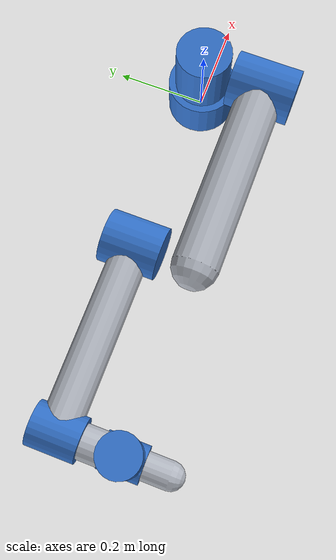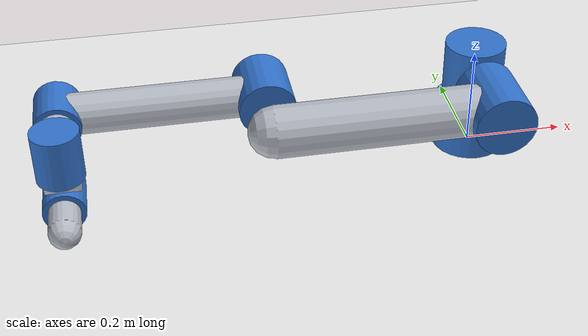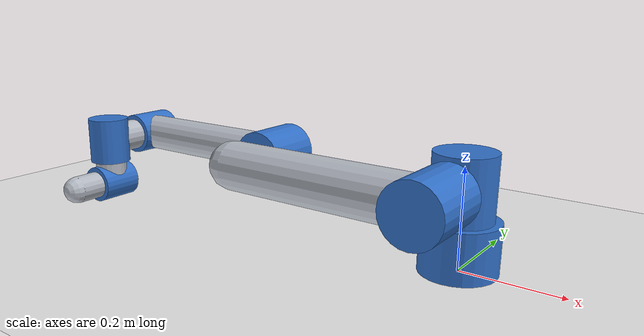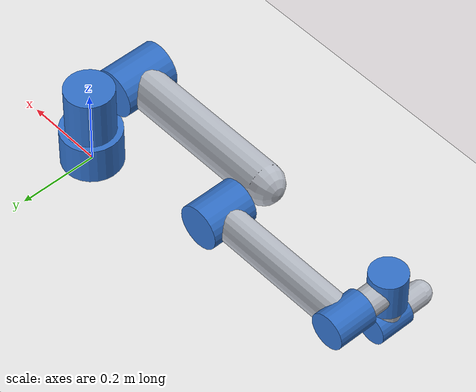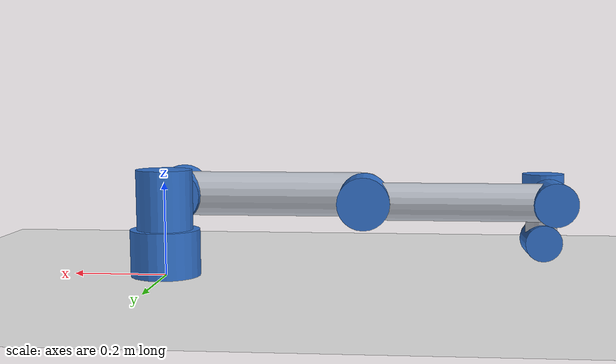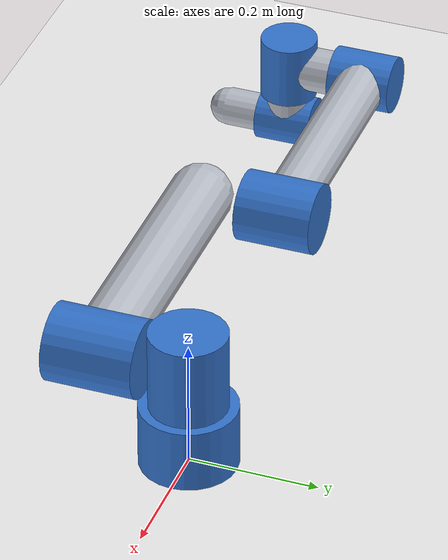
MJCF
<mujoco model="ur5e_style">
  <compiler angle="radian" autolimits="true"/>
  <option timestep="0.001" gravity="0 0 -9.81">
    <flag contact="disable"/>
  </option>

  <visual>
    <global offwidth="640" offheight="480"/>
    <headlight ambient="0.35 0.35 0.35" diffuse="0.5 0.5 0.5"/>
  </visual>

  <asset>
    <texture type="skybox" builtin="gradient" rgb1="0.98 0.98 0.97" rgb2="0.86 0.88 0.9" width="64" height="64"/>
  </asset>

  <default>
    <joint axis="0 1 0" armature="0.1" range="-6.28319 6.28319"/>
    <geom contype="0" conaffinity="0" rgba="0.72 0.74 0.78 1"/>
    <default class="joint_cap">
      <geom type="cylinder" rgba="0.2 0.45 0.8 1"/>
    </default>
    <default class="link">
      <geom type="capsule"/>
    </default>
  </default>

  <worldbody>
    <light pos="0 0 3" dir="0 0 -1" directional="true"/>
    <geom name="floor" type="plane" size="1.5 1.5 0.05" rgba="0.92 0.92 0.92 1"/>

    <body name="base" quat="0 0 0 -1">
      <inertial mass="4.0" pos="0 0 0" diaginertia="0.00443333156 0.00443333156 0.0072"/>
      <geom class="joint_cap" size="0.075 0.05" pos="0 0 0.05"/>

      <body name="shoulder_link" pos="0 0 0.163">
        <inertial mass="3.7" pos="0 0 0" diaginertia="0.0102675 0.0102675 0.00666"/>
        <joint name="shoulder_pan" axis="0 0 1"/>
        <geom class="joint_cap" size="0.06 0.065"/>

        <body name="upper_arm_link" pos="0 0.138 0" quat="1 0 1 0">
          <inertial mass="8.393" pos="0 0 0.2125" diaginertia="0.133886 0.133886 0.0151074"/>
          <joint name="shoulder_lift"/>
          <geom class="joint_cap" size="0.06 0.07" quat="1 1 0 0"/>
          <geom class="link" fromto="0 0 0 0 0 0.425" size="0.05"/>

          <body name="forearm_link" pos="0 -0.131 0.425">
            <inertial mass="2.275" pos="0 0 0.196" diaginertia="0.0311796 0.0311796 0.004095"/>
            <joint name="elbow" range="-3.1415 3.1415"/>
            <geom class="joint_cap" size="0.055 0.06" quat="1 1 0 0"/>
            <geom class="link" fromto="0 0 0 0 0 0.392" size="0.04"/>

            <body name="wrist_1_link" pos="0 0 0.392" quat="1 0 1 0">
              <inertial mass="1.219" pos="0 0.127 0" diaginertia="0.0025599 0.0025599 0.0021942"/>
              <joint name="wrist_1"/>
              <geom class="joint_cap" size="0.045 0.05" quat="1 1 0 0"/>
              <geom class="link" fromto="0 0 0 0 0.127 0" size="0.035"/>

              <body name="wrist_2_link" pos="0 0.127 0">
                <inertial mass="1.219" pos="0 0 0.1" diaginertia="0.0025599 0.0025599 0.0021942"/>
                <joint name="wrist_2" axis="0 0 1"/>
                <geom class="joint_cap" size="0.045 0.05"/>
                <geom class="link" fromto="0 0 0 0 0 0.1" size="0.035"/>

                <body name="wrist_3_link" pos="0 0 0.1">
                  <inertial mass="0.1889" pos="0 0.0771683 0" quat="1 0 0 1"
                            diaginertia="0.000132134 9.90863e-05 9.90863e-05"/>
                  <joint name="wrist_3"/>
                  <geom class="joint_cap" size="0.04 0.045" quat="1 1 0 0"/>
                  <geom class="link" fromto="0 0 0 0 0.1 0" size="0.03"/>
                  <site name="ee" pos="0 0.1 0" quat="-1 1 0 0" size="0.01"/>
                  <!-- PAYLOAD -->
                </body>
              </body>
            </body>
          </body>
        </body>
      </body>
    </body>
  </worldbody>

  <!-- Direct torque control with the UR5e's rated joint torque limits. -->
  <actuator>
    <motor name="shoulder_pan" joint="shoulder_pan" ctrlrange="-150 150"/>
    <motor name="shoulder_lift" joint="shoulder_lift" ctrlrange="-150 150"/>
    <motor name="elbow" joint="elbow" ctrlrange="-150 150"/>
    <motor name="wrist_1" joint="wrist_1" ctrlrange="-28 28"/>
    <motor name="wrist_2" joint="wrist_2" ctrlrange="-28 28"/>
    <motor name="wrist_3" joint="wrist_3" ctrlrange="-28 28"/>
  </actuator>

  <keyframe>
    <key name="home" qpos="-1.5708 -1.5708 1.5708 -1.5708 -1.5708 0"/>
  </keyframe>
</mujoco>
